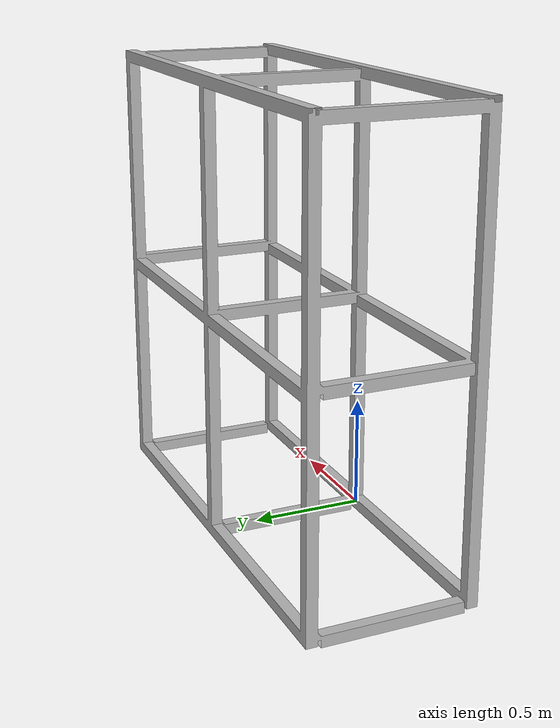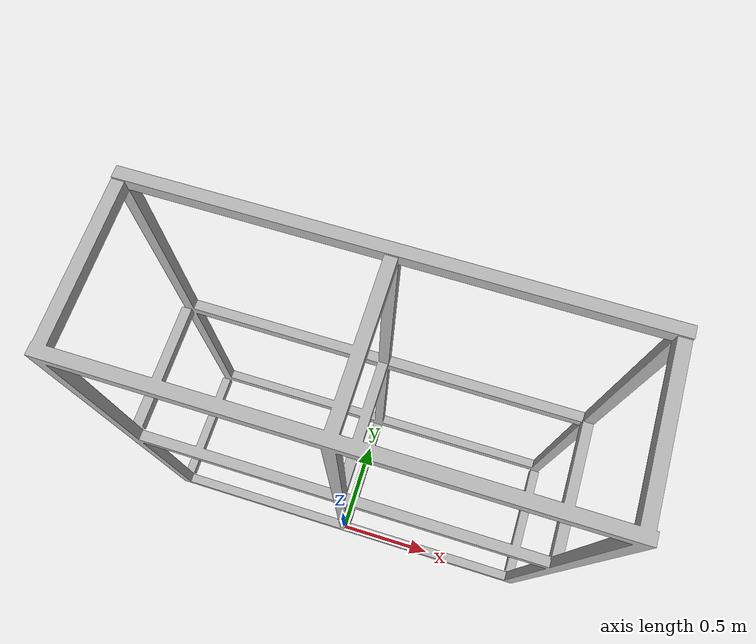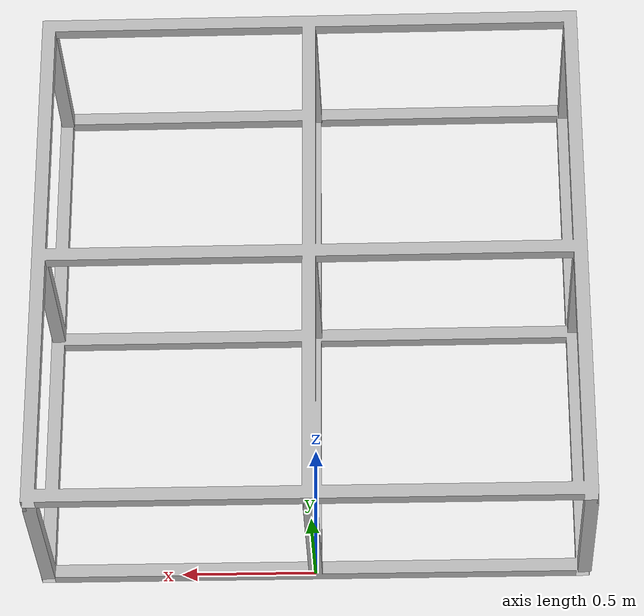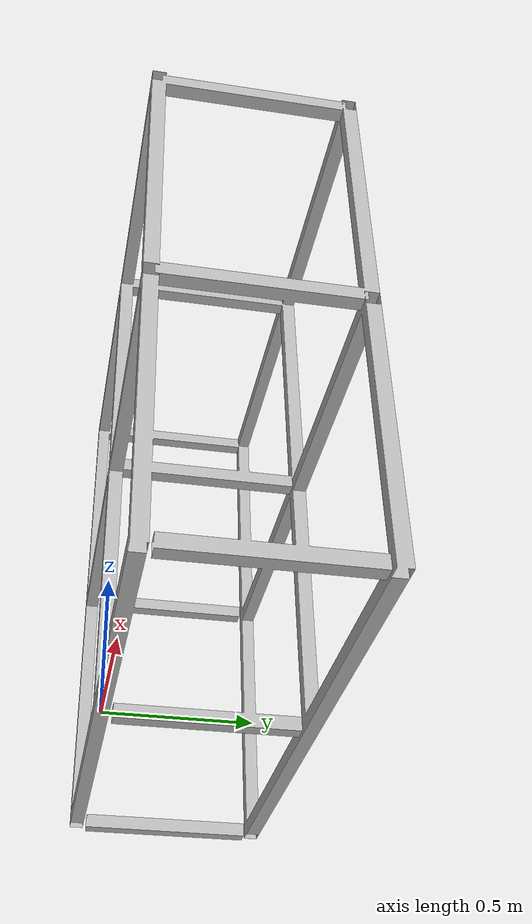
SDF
<?xml version='1.0'?>
<sdf version='1.4'>
  <model name="dronerace gate 2018">
    <static>true</static>
    <pose>0 0 0 0 0 0</pose>

    <link name="dronerace gate 2018">
      <visual name="gate">
        <geometry>
          <mesh>
            <uri>model://dronerace_junglegate_2018/jungle_gate_2018.dae</uri>
          </mesh>
        </geometry>
      </visual>
      <collision name="gate_collision">
        <geometry>
          <mesh>
            <uri>model://dronerace_junglegate_2018/jungle_gate_2018.dae</uri>
          </mesh>
        </geometry>
      </collision>
    </link>

  </model>
</sdf>
